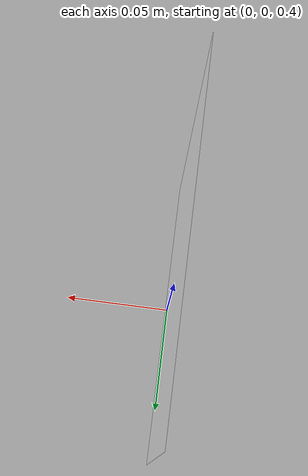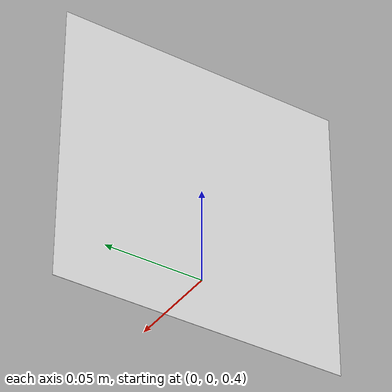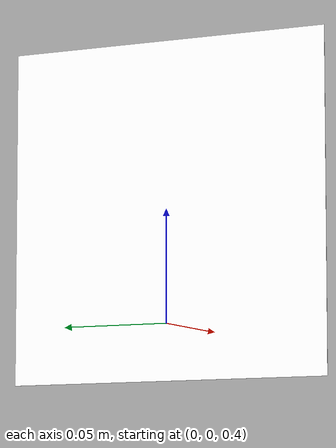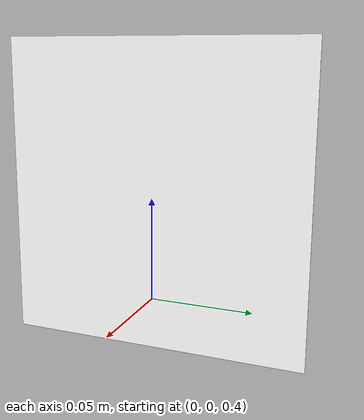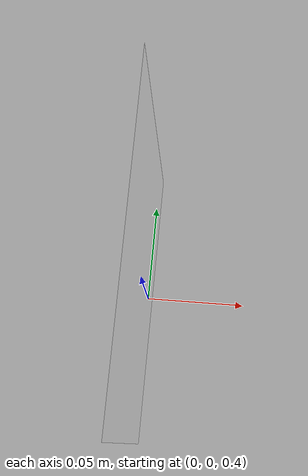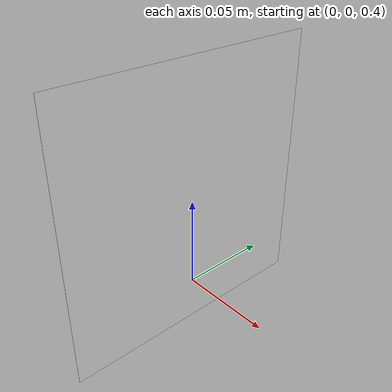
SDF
<?xml version="1.0"?>
<sdf version="1.9">
  <model name="aruco_marker_0">
    <static>true</static>
    <link name="link">
      <pose>0 0 0.45 0 0 0</pose>

      <visual name="visual">
        <geometry>
          <plane>
            <normal>1 0 0</normal>
            <size>0.15 0.15</size>
          </plane>
        </geometry>
        <material>
          <ambient>1 1 1 1</ambient>
          <diffuse>1 1 1 1</diffuse>
          <specular>0 0 0 1</specular>
          <emissive>1 1 1 1</emissive>
          <pbr>
            <metal>
              <albedo_map>/home/uddipto/ros_ws/src/packages/linorobot2/linorobot2_gazebo/models/aruco_marker_0/materials/textures/marker_0000.png</albedo_map>
              <emissive_map>/home/uddipto/ros_ws/src/packages/linorobot2/linorobot2_gazebo/models/aruco_marker_0/materials/textures/marker_0000.png</emissive_map>
              <metalness>0.0</metalness>
              <roughness>1.0</roughness>
            </metal>
          </pbr>
        </material>
      </visual>

      <collision name="collision">
        <geometry>
          <box><size>0.002 0.15 0.15</size></box>
        </geometry>
      </collision>

    </link>
  </model>
</sdf>
